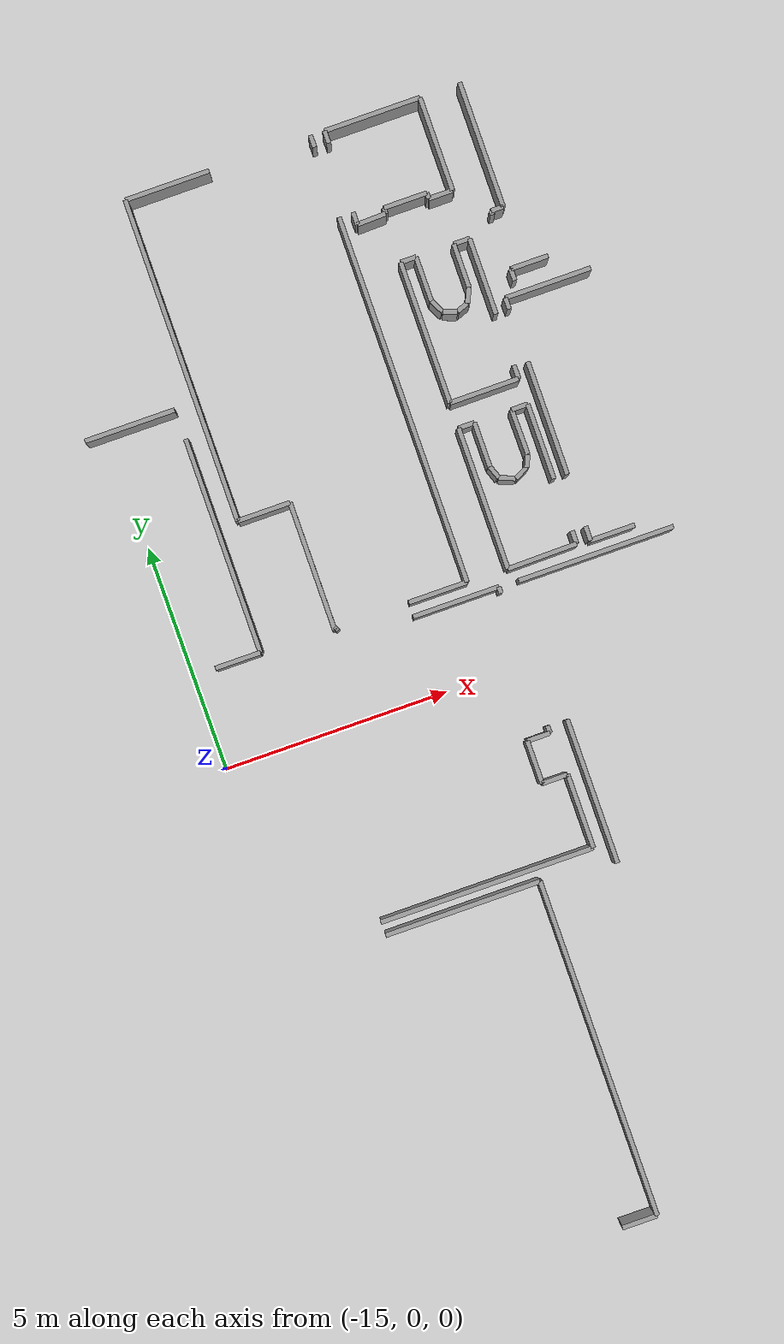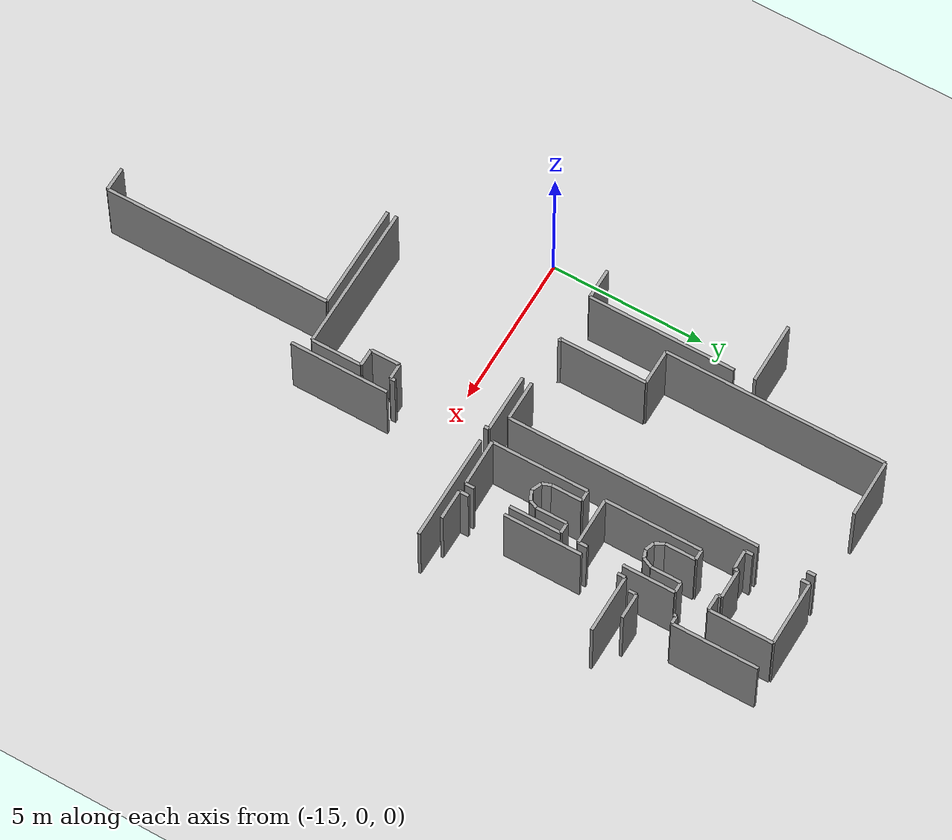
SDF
<sdf version="1.6">
 <world name="default">
  <model name="ground_plane">
   <static>1</static>
   <link name="link">
    <collision name="collision">
     <geometry><plane><normal>0 0 1</normal><size>100 100</size></plane></geometry>
     <surface><friction><ode><mu>100</mu><mu2>50</mu2></ode></friction></surface>
    </collision>
    <visual name="visual">
     <cast_shadows>0</cast_shadows>
     <geometry><plane><normal>0 0 1</normal><size>100 100</size></plane></geometry>
     <material>
      <script><uri>file://media/materials/scripts/gazebo.material</uri><name>Gazebo/Grey</name></script>
     </material>
    </visual>
   </link>
  </model>
  <model name="0510034690_Layout1">
   <static>1</static>
   <link name="Wall_35">
    <collision name="Wall_35_Collision">
     <geometry><box><size>3.4456132966 0.1 2.5</size></box></geometry>
     <pose>1.7228066483 0 1.25 0 0 0</pose>
    </collision>
    <visual name="Wall_35_Visual">
     <pose>1.7228066483 0 1.25 0 0 0</pose>
     <geometry><box><size>3.4456132966 0.1 2.5</size></box></geometry>
     <material>
      <script><uri>file://media/materials/scripts/gazebo.material</uri><name>Gazebo/Grey</name></script>
      <ambient>1 1 1 1</ambient>
     </material>
    </visual>
    <pose>43.1615809553 -17.1995389958 0 0 0 0.0</pose>
   </link>
   <link name="Wall_36">
    <collision name="Wall_36_Collision">
     <geometry><box><size>7.45252075216 0.1 2.5</size></box></geometry>
     <pose>3.72626037608 0 1.25 0 0 0</pose>
    </collision>
    <visual name="Wall_36_Visual">
     <pose>3.72626037608 0 1.25 0 0 0</pose>
     <geometry><box><size>7.45252075216 0.1 2.5</size></box></geometry>
     <material>
      <script><uri>file://media/materials/scripts/gazebo.material</uri><name>Gazebo/Grey</name></script>
      <ambient>1 1 1 1</ambient>
     </material>
    </visual>
    <pose>46.6071942519 -17.1995389958 0 0 0 -1.57079632679</pose>
   </link>
   <link name="Wall_37">
    <collision name="Wall_37_Collision">
     <geometry><box><size>0.779497738721 0.1 2.5</size></box></geometry>
     <pose>0.389748869361 0 1.25 0 0 0</pose>
    </collision>
    <visual name="Wall_37_Visual">
     <pose>0.389748869361 0 1.25 0 0 0</pose>
     <geometry><box><size>0.779497738721 0.1 2.5</size></box></geometry>
     <material>
      <script><uri>file://media/materials/scripts/gazebo.material</uri><name>Gazebo/Grey</name></script>
      <ambient>1 1 1 1</ambient>
     </material>
    </visual>
    <pose>46.6071942519 -24.652059748 0 0 0 3.14159265359</pose>
   </link>
   <link name="Wall_39">
    <collision name="Wall_39_Collision">
     <geometry><box><size>2.85274871848 0.1 2.5</size></box></geometry>
     <pose>1.42637435924 0 1.25 0 0 0</pose>
    </collision>
    <visual name="Wall_39_Visual">
     <pose>1.42637435924 0 1.25 0 0 0</pose>
     <geometry><box><size>2.85274871848 0.1 2.5</size></box></geometry>
     <material>
      <script><uri>file://media/materials/scripts/gazebo.material</uri><name>Gazebo/Grey</name></script>
      <ambient>1 1 1 1</ambient>
     </material>
    </visual>
    <pose>44.2742797443 -10.782502634 0 0 0 1.57079632679</pose>
   </link>
   <link name="Wall_40">
    <collision name="Wall_40_Collision">
     <geometry><box><size>1.16975376341 0.1 2.5</size></box></geometry>
     <pose>0.584876881705 0 1.25 0 0 0</pose>
    </collision>
    <visual name="Wall_40_Visual">
     <pose>0.584876881705 0 1.25 0 0 0</pose>
     <geometry><box><size>1.16975376341 0.1 2.5</size></box></geometry>
     <material>
      <script><uri>file://media/materials/scripts/gazebo.material</uri><name>Gazebo/Grey</name></script>
      <ambient>1 1 1 1</ambient>
     </material>
    </visual>
    <pose>44.2742797443 -7.92975391556 0 0 0 3.14159265359</pose>
   </link>
   <link name="Wall_41">
    <collision name="Wall_41_Collision">
     <geometry><box><size>7.16902092396 0.1 2.5</size></box></geometry>
     <pose>3.58451046198 0 1.25 0 0 0</pose>
    </collision>
    <visual name="Wall_41_Visual">
     <pose>3.58451046198 0 1.25 0 0 0</pose>
     <geometry><box><size>7.16902092396 0.1 2.5</size></box></geometry>
     <material>
      <script><uri>file://media/materials/scripts/gazebo.material</uri><name>Gazebo/Grey</name></script>
      <ambient>1 1 1 1</ambient>
     </material>
    </visual>
    <pose>43.1045259809 -7.92975391556 0 0 0 1.57079632679</pose>
   </link>
   <link name="Wall_42">
    <collision name="Wall_42_Collision">
     <geometry><box><size>1.87431930246 0.1 2.5</size></box></geometry>
     <pose>0.937159651229 0 1.25 0 0 0</pose>
    </collision>
    <visual name="Wall_42_Visual">
     <pose>0.937159651229 0 1.25 0 0 0</pose>
     <geometry><box><size>1.87431930246 0.1 2.5</size></box></geometry>
     <material>
      <script><uri>file://media/materials/scripts/gazebo.material</uri><name>Gazebo/Grey</name></script>
      <ambient>1 1 1 1</ambient>
     </material>
    </visual>
    <pose>43.1045259809 -0.760732991595 0 0 0 0.0</pose>
   </link>
   <link name="Wall_43">
    <collision name="Wall_43_Collision">
     <geometry><box><size>0.264481503411 0.1 2.5</size></box></geometry>
     <pose>0.132240751706 0 1.25 0 0 0</pose>
    </collision>
    <visual name="Wall_43_Visual">
     <pose>0.132240751706 0 1.25 0 0 0</pose>
     <geometry><box><size>0.264481503411 0.1 2.5</size></box></geometry>
     <material>
      <script><uri>file://media/materials/scripts/gazebo.material</uri><name>Gazebo/Grey</name></script>
      <ambient>1 1 1 1</ambient>
     </material>
    </visual>
    <pose>47.2389830014 -0.760732991595 0 0 0 -1.57079632679</pose>
   </link>
   <link name="Wall_44">
    <collision name="Wall_44_Collision">
     <geometry><box><size>8.15391657041 0.1 2.5</size></box></geometry>
     <pose>4.07695828521 0 1.25 0 0 0</pose>
    </collision>
    <visual name="Wall_44_Visual">
     <pose>4.07695828521 0 1.25 0 0 0</pose>
     <geometry><box><size>8.15391657041 0.1 2.5</size></box></geometry>
     <material>
      <script><uri>file://media/materials/scripts/gazebo.material</uri><name>Gazebo/Grey</name></script>
      <ambient>1 1 1 1</ambient>
     </material>
    </visual>
    <pose>47.2389830014 -2.58890115923 0 0 0 -1.57079632679</pose>
   </link>
   <link name="Wall_45">
    <collision name="Wall_45_Collision">
     <geometry><box><size>1.30098020446 0.1 2.5</size></box></geometry>
     <pose>0.65049010223 0 1.25 0 0 0</pose>
    </collision>
    <visual name="Wall_45_Visual">
     <pose>0.65049010223 0 1.25 0 0 0</pose>
     <geometry><box><size>1.30098020446 0.1 2.5</size></box></geometry>
     <material>
      <script><uri>file://media/materials/scripts/gazebo.material</uri><name>Gazebo/Grey</name></script>
      <ambient>1 1 1 1</ambient>
     </material>
    </visual>
    <pose>47.2389830014 -10.7428177296 0 0 0 3.14159265359</pose>
   </link>
   <link name="Wall_46">
    <collision name="Wall_46_Collision">
     <geometry><box><size>0.0923848718355 0.1 2.5</size></box></geometry>
     <pose>0.0461924359178 0 1.25 0 0 0</pose>
    </collision>
    <visual name="Wall_46_Visual">
     <pose>0.0461924359178 0 1.25 0 0 0</pose>
     <geometry><box><size>0.0923848718355 0.1 2.5</size></box></geometry>
     <material>
      <script><uri>file://media/materials/scripts/gazebo.material</uri><name>Gazebo/Grey</name></script>
      <ambient>1 1 1 1</ambient>
     </material>
    </visual>
    <pose>44.3577067958 -10.7428177296 0 0 0 -2.69758647175</pose>
   </link>
   <link name="Wall_54">
    <collision name="Wall_54_Collision">
     <geometry><box><size>1.99907951308 0.1 2.5</size></box></geometry>
     <pose>0.99953975654 0 1.25 0 0 0</pose>
    </collision>
    <visual name="Wall_54_Visual">
     <pose>0.99953975654 0 1.25 0 0 0</pose>
     <geometry><box><size>1.99907951308 0.1 2.5</size></box></geometry>
     <material>
      <script><uri>file://media/materials/scripts/gazebo.material</uri><name>Gazebo/Grey</name></script>
      <ambient>1 1 1 1</ambient>
     </material>
    </visual>
    <pose>42.6229819973 -5.28100842765 0 0 0 3.14159265359</pose>
   </link>
   <link name="Wall_57">
    <collision name="Wall_57_Collision">
     <geometry><box><size>4.76396357103 0.1 2.5</size></box></geometry>
     <pose>2.38198178552 0 1.25 0 0 0</pose>
    </collision>
    <visual name="Wall_57_Visual">
     <pose>2.38198178552 0 1.25 0 0 0</pose>
     <geometry><box><size>4.76396357103 0.1 2.5</size></box></geometry>
     <material>
      <script><uri>file://media/materials/scripts/gazebo.material</uri><name>Gazebo/Grey</name></script>
      <ambient>1 1 1 1</ambient>
     </material>
    </visual>
    <pose>42.6414931667 -5.94246576385 0 0 0 -1.57079632679</pose>
   </link>
   <link name="Wall_58">
    <collision name="Wall_58_Collision">
     <geometry><box><size>1.00442112657 0.1 2.5</size></box></geometry>
     <pose>0.502210563285 0 1.25 0 0 0</pose>
    </collision>
    <visual name="Wall_58_Visual">
     <pose>0.502210563285 0 1.25 0 0 0</pose>
     <geometry><box><size>1.00442112657 0.1 2.5</size></box></geometry>
     <material>
      <script><uri>file://media/materials/scripts/gazebo.material</uri><name>Gazebo/Grey</name></script>
      <ambient>1 1 1 1</ambient>
     </material>
    </visual>
    <pose>42.6414931667 -10.7064293349 0 0 0 3.14159265359</pose>
   </link>
   <link name="Wall_75">
    <collision name="Wall_75_Collision">
     <geometry><box><size>1.9126095297 0.1 2.5</size></box></geometry>
     <pose>0.956304764851 0 1.25 0 0 0</pose>
    </collision>
    <visual name="Wall_75_Visual">
     <pose>0.956304764851 0 1.25 0 0 0</pose>
     <geometry><box><size>1.9126095297 0.1 2.5</size></box></geometry>
     <material>
      <script><uri>file://media/materials/scripts/gazebo.material</uri><name>Gazebo/Grey</name></script>
      <ambient>1 1 1 1</ambient>
     </material>
    </visual>
    <pose>45.9244363919 -11.0581415547 0 0 0 0.0</pose>
   </link>
   <link name="Wall_76">
    <collision name="Wall_76_Collision">
     <geometry><box><size>0.142764224756 0.1 2.5</size></box></geometry>
     <pose>0.071382112378 0 1.25 0 0 0</pose>
    </collision>
    <visual name="Wall_76_Visual">
     <pose>0.071382112378 0 1.25 0 0 0</pose>
     <geometry><box><size>0.142764224756 0.1 2.5</size></box></geometry>
     <material>
      <script><uri>file://media/materials/scripts/gazebo.material</uri><name>Gazebo/Grey</name></script>
      <ambient>1 1 1 1</ambient>
     </material>
    </visual>
    <pose>47.8370459216 -11.0581415547 0 0 0 -1.57079632679</pose>
   </link>
   <link name="Wall_77">
    <collision name="Wall_77_Collision">
     <geometry><box><size>0.160387872395 0.1 2.5</size></box></geometry>
     <pose>0.0801939361973 0 1.25 0 0 0</pose>
    </collision>
    <visual name="Wall_77_Visual">
     <pose>0.0801939361973 0 1.25 0 0 0</pose>
     <geometry><box><size>0.160387872395 0.1 2.5</size></box></geometry>
     <material>
      <script><uri>file://media/materials/scripts/gazebo.material</uri><name>Gazebo/Grey</name></script>
      <ambient>1 1 1 1</ambient>
     </material>
    </visual>
    <pose>47.8370459216 -14.161425005 0 0 0 -1.57079632679</pose>
   </link>
   <link name="Wall_78">
    <collision name="Wall_78_Collision">
     <geometry><box><size>0.50652138357 0.1 2.5</size></box></geometry>
     <pose>0.253260691785 0 1.25 0 0 0</pose>
    </collision>
    <visual name="Wall_78_Visual">
     <pose>0.253260691785 0 1.25 0 0 0</pose>
     <geometry><box><size>0.50652138357 0.1 2.5</size></box></geometry>
     <material>
      <script><uri>file://media/materials/scripts/gazebo.material</uri><name>Gazebo/Grey</name></script>
      <ambient>1 1 1 1</ambient>
     </material>
    </visual>
    <pose>47.8370459216 -14.3218128774 0 0 0 3.14159265359</pose>
   </link>
   <link name="Wall_79">
    <collision name="Wall_79_Collision">
     <geometry><box><size>0.947746518696 0.1 2.5</size></box></geometry>
     <pose>0.473873259348 0 1.25 0 0 0</pose>
    </collision>
    <visual name="Wall_79_Visual">
     <pose>0.473873259348 0 1.25 0 0 0</pose>
     <geometry><box><size>0.947746518696 0.1 2.5</size></box></geometry>
     <material>
      <script><uri>file://media/materials/scripts/gazebo.material</uri><name>Gazebo/Grey</name></script>
      <ambient>1 1 1 1</ambient>
     </material>
    </visual>
    <pose>47.3305245381 -14.3218128774 0 0 0 -1.57079632679</pose>
   </link>
   <link name="Wall_80">
    <collision name="Wall_80_Collision">
     <geometry><box><size>0.568647911217 0.1 2.5</size></box></geometry>
     <pose>0.284323955609 0 1.25 0 0 0</pose>
    </collision>
    <visual name="Wall_80_Visual">
     <pose>0.284323955609 0 1.25 0 0 0</pose>
     <geometry><box><size>0.568647911217 0.1 2.5</size></box></geometry>
     <material>
      <script><uri>file://media/materials/scripts/gazebo.material</uri><name>Gazebo/Grey</name></script>
      <ambient>1 1 1 1</ambient>
     </material>
    </visual>
    <pose>47.3305245381 -15.2695593961 0 0 0 0.0</pose>
   </link>
   <link name="Wall_81">
    <collision name="Wall_81_Collision">
     <geometry><box><size>1.6350687766 0.1 2.5</size></box></geometry>
     <pose>0.817534388301 0 1.25 0 0 0</pose>
    </collision>
    <visual name="Wall_81_Visual">
     <pose>0.817534388301 0 1.25 0 0 0</pose>
     <geometry><box><size>1.6350687766 0.1 2.5</size></box></geometry>
     <material>
      <script><uri>file://media/materials/scripts/gazebo.material</uri><name>Gazebo/Grey</name></script>
      <ambient>1 1 1 1</ambient>
     </material>
    </visual>
    <pose>47.8991724493 -15.2695593961 0 0 0 -1.57079632679</pose>
   </link>
   <link name="Wall_82">
    <collision name="Wall_82_Collision">
     <geometry><box><size>4.74481845741 0.1 2.5</size></box></geometry>
     <pose>2.37240922871 0 1.25 0 0 0</pose>
    </collision>
    <visual name="Wall_82_Visual">
     <pose>2.37240922871 0 1.25 0 0 0</pose>
     <geometry><box><size>4.74481845741 0.1 2.5</size></box></geometry>
     <material>
      <script><uri>file://media/materials/scripts/gazebo.material</uri><name>Gazebo/Grey</name></script>
      <ambient>1 1 1 1</ambient>
     </material>
    </visual>
    <pose>47.8991724493 -16.9046281727 0 0 0 3.14159265359</pose>
   </link>
   <link name="Wall_87">
    <collision name="Wall_87_Collision">
     <geometry><box><size>3.14093973346 0.1 2.5</size></box></geometry>
     <pose>1.57046986673 0 1.25 0 0 0</pose>
    </collision>
    <visual name="Wall_87_Visual">
     <pose>1.57046986673 0 1.25 0 0 0</pose>
     <geometry><box><size>3.14093973346 0.1 2.5</size></box></geometry>
     <material>
      <script><uri>file://media/materials/scripts/gazebo.material</uri><name>Gazebo/Grey</name></script>
      <ambient>1 1 1 1</ambient>
     </material>
    </visual>
    <pose>48.1499607589 -7.05934858434 0 0 0 1.57079632679</pose>
   </link>
   <link name="Wall_88">
    <collision name="Wall_88_Collision">
     <geometry><box><size>0.339794069579 0.1 2.5</size></box></geometry>
     <pose>0.16989703479 0 1.25 0 0 0</pose>
    </collision>
    <visual name="Wall_88_Visual">
     <pose>0.16989703479 0 1.25 0 0 0</pose>
     <geometry><box><size>0.339794069579 0.1 2.5</size></box></geometry>
     <material>
      <script><uri>file://media/materials/scripts/gazebo.material</uri><name>Gazebo/Grey</name></script>
      <ambient>1 1 1 1</ambient>
     </material>
    </visual>
    <pose>48.1499607589 -3.91840885087 0 0 0 0.0</pose>
   </link>
   <link name="Wall_89">
    <collision name="Wall_89_Collision">
     <geometry><box><size>0.986670690099 0.1 2.5</size></box></geometry>
     <pose>0.493335345049 0 1.25 0 0 0</pose>
    </collision>
    <visual name="Wall_89_Visual">
     <pose>0.493335345049 0 1.25 0 0 0</pose>
     <geometry><box><size>0.986670690099 0.1 2.5</size></box></geometry>
     <material>
      <script><uri>file://media/materials/scripts/gazebo.material</uri><name>Gazebo/Grey</name></script>
      <ambient>1 1 1 1</ambient>
     </material>
    </visual>
    <pose>48.4897548284 -3.91840885087 0 0 0 -1.57079632679</pose>
   </link>
   <link name="Wall_90">
    <collision name="Wall_90_Collision">
     <geometry><box><size>0.323746909501 0.1 2.5</size></box></geometry>
     <pose>0.161873454751 0 1.25 0 0 0</pose>
    </collision>
    <visual name="Wall_90_Visual">
     <pose>0.161873454751 0 1.25 0 0 0</pose>
     <geometry><box><size>0.323746909501 0.1 2.5</size></box></geometry>
     <material>
      <script><uri>file://media/materials/scripts/gazebo.material</uri><name>Gazebo/Grey</name></script>
      <ambient>1 1 1 1</ambient>
     </material>
    </visual>
    <pose>48.4897548284 -4.90507954097 0 0 0 -1.07666928641</pose>
   </link>
   <link name="Wall_91">
    <collision name="Wall_91_Collision">
     <geometry><box><size>0.308604251332 0.1 2.5</size></box></geometry>
     <pose>0.154302125666 0 1.25 0 0 0</pose>
    </collision>
    <visual name="Wall_91_Visual">
     <pose>0.154302125666 0 1.25 0 0 0</pose>
     <geometry><box><size>0.308604251332 0.1 2.5</size></box></geometry>
     <material>
      <script><uri>file://media/materials/scripts/gazebo.material</uri><name>Gazebo/Grey</name></script>
      <ambient>1 1 1 1</ambient>
     </material>
    </visual>
    <pose>48.6432961039 -5.19010083516 0 0 0 -0.344488675168</pose>
   </link>
   <link name="Wall_92">
    <collision name="Wall_92_Collision">
     <geometry><box><size>0.273970951516 0.1 2.5</size></box></geometry>
     <pose>0.136985475758 0 1.25 0 0 0</pose>
    </collision>
    <visual name="Wall_92_Visual">
     <pose>0.136985475758 0 1.25 0 0 0</pose>
     <geometry><box><size>0.273970951516 0.1 2.5</size></box></geometry>
     <material>
      <script><uri>file://media/materials/scripts/gazebo.material</uri><name>Gazebo/Grey</name></script>
      <ambient>1 1 1 1</ambient>
     </material>
    </visual>
    <pose>48.9337693179 -5.29432125501 0 0 0 0.347070862884</pose>
   </link>
   <link name="Wall_93">
    <collision name="Wall_93_Collision">
     <geometry><box><size>0.343377116642 0.1 2.5</size></box></geometry>
     <pose>0.171688558321 0 1.25 0 0 0</pose>
    </collision>
    <visual name="Wall_93_Visual">
     <pose>0.171688558321 0 1.25 0 0 0</pose>
     <geometry><box><size>0.343377116642 0.1 2.5</size></box></geometry>
     <material>
      <script><uri>file://media/materials/scripts/gazebo.material</uri><name>Gazebo/Grey</name></script>
      <ambient>1 1 1 1</ambient>
     </material>
    </visual>
    <pose>49.1914042244 -5.20113146354 0 0 0 1.14282425558</pose>
   </link>
   <link name="Wall_94">
    <collision name="Wall_94_Collision">
     <geometry><box><size>0.964736222175 0.1 2.5</size></box></geometry>
     <pose>0.482368111087 0 1.25 0 0 0</pose>
    </collision>
    <visual name="Wall_94_Visual">
     <pose>0.482368111087 0 1.25 0 0 0</pose>
     <geometry><box><size>0.964736222175 0.1 2.5</size></box></geometry>
     <material>
      <script><uri>file://media/materials/scripts/gazebo.material</uri><name>Gazebo/Grey</name></script>
      <ambient>1 1 1 1</ambient>
     </material>
    </visual>
    <pose>49.3339148714 -4.88872378165 0 0 0 1.57079632679</pose>
   </link>
   <link name="Wall_95">
    <collision name="Wall_95_Collision">
     <geometry><box><size>0.350824697957 0.1 2.5</size></box></geometry>
     <pose>0.175412348979 0 1.25 0 0 0</pose>
    </collision>
    <visual name="Wall_95_Visual">
     <pose>0.175412348979 0 1.25 0 0 0</pose>
     <geometry><box><size>0.350824697957 0.1 2.5</size></box></geometry>
     <material>
      <script><uri>file://media/materials/scripts/gazebo.material</uri><name>Gazebo/Grey</name></script>
      <ambient>1 1 1 1</ambient>
     </material>
    </visual>
    <pose>49.3339148714 -3.92398755948 0 0 0 0.0</pose>
   </link>
   <link name="Wall_96">
    <collision name="Wall_96_Collision">
     <geometry><box><size>1.6862914647 0.1 2.5</size></box></geometry>
     <pose>0.843145732351 0 1.25 0 0 0</pose>
    </collision>
    <visual name="Wall_96_Visual">
     <pose>0.843145732351 0 1.25 0 0 0</pose>
     <geometry><box><size>1.6862914647 0.1 2.5</size></box></geometry>
     <material>
      <script><uri>file://media/materials/scripts/gazebo.material</uri><name>Gazebo/Grey</name></script>
      <ambient>1 1 1 1</ambient>
     </material>
    </visual>
    <pose>49.6847395694 -3.92398755948 0 0 0 -1.57079632679</pose>
   </link>
   <link name="Wall_97">
    <collision name="Wall_97_Collision">
     <geometry><box><size>0.300235954016 0.1 2.5</size></box></geometry>
     <pose>0.150117977008 0 1.25 0 0 0</pose>
    </collision>
    <visual name="Wall_97_Visual">
     <pose>0.150117977008 0 1.25 0 0 0</pose>
     <geometry><box><size>0.300235954016 0.1 2.5</size></box></geometry>
     <material>
      <script><uri>file://media/materials/scripts/gazebo.material</uri><name>Gazebo/Grey</name></script>
      <ambient>1 1 1 1</ambient>
     </material>
    </visual>
    <pose>49.6847395694 -6.75264639989 0 0 0 -1.57079632679</pose>
   </link>
   <link name="Wall_98">
    <collision name="Wall_98_Collision">
     <geometry><box><size>1.53479243203 0.1 2.5</size></box></geometry>
     <pose>0.767396216017 0 1.25 0 0 0</pose>
    </collision>
    <visual name="Wall_98_Visual">
     <pose>0.767396216017 0 1.25 0 0 0</pose>
     <geometry><box><size>1.53479243203 0.1 2.5</size></box></geometry>
     <material>
      <script><uri>file://media/materials/scripts/gazebo.material</uri><name>Gazebo/Grey</name></script>
      <ambient>1 1 1 1</ambient>
     </material>
    </visual>
    <pose>49.6847395694 -7.05288235391 0 0 0 -3.13737954345</pose>
   </link>
   <link name="Wall_99">
    <collision name="Wall_99_Collision">
     <geometry><box><size>0.27094773384 0.1 2.5</size></box></geometry>
     <pose>0.13547386692 0 1.25 0 0 0</pose>
    </collision>
    <visual name="Wall_99_Visual">
     <pose>0.13547386692 0 1.25 0 0 0</pose>
     <geometry><box><size>0.27094773384 0.1 2.5</size></box></geometry>
     <material>
      <script><uri>file://media/materials/scripts/gazebo.material</uri><name>Gazebo/Grey</name></script>
      <ambient>1 1 1 1</ambient>
     </material>
    </visual>
    <pose>47.5511371056 -2.86377934686 0 0 0 1.57079632679</pose>
   </link>
   <link name="Wall_100">
    <collision name="Wall_100_Collision">
     <geometry><box><size>0.271074522672 0.1 2.5</size></box></geometry>
     <pose>0.135537261336 0 1.25 0 0 0</pose>
    </collision>
    <visual name="Wall_100_Visual">
     <pose>0.135537261336 0 1.25 0 0 0</pose>
     <geometry><box><size>0.271074522672 0.1 2.5</size></box></geometry>
     <material>
      <script><uri>file://media/materials/scripts/gazebo.material</uri><name>Gazebo/Grey</name></script>
      <ambient>1 1 1 1</ambient>
     </material>
    </visual>
    <pose>47.5511371056 -1.04207740965 0 0 0 1.57079632679</pose>
   </link>
   <link name="Wall_101">
    <collision name="Wall_101_Collision">
     <geometry><box><size>2.13055953179 0.1 2.5</size></box></geometry>
     <pose>1.0652797659 0 1.25 0 0 0</pose>
    </collision>
    <visual name="Wall_101_Visual">
     <pose>1.0652797659 0 1.25 0 0 0</pose>
     <geometry><box><size>2.13055953179 0.1 2.5</size></box></geometry>
     <material>
      <script><uri>file://media/materials/scripts/gazebo.material</uri><name>Gazebo/Grey</name></script>
      <ambient>1 1 1 1</ambient>
     </material>
    </visual>
    <pose>47.5511371056 -0.771002886982 0 0 0 0.0</pose>
   </link>
   <link name="Wall_102">
    <collision name="Wall_102_Collision">
     <geometry><box><size>2.07388492392 0.1 2.5</size></box></geometry>
     <pose>1.03694246196 0 1.25 0 0 0</pose>
    </collision>
    <visual name="Wall_102_Visual">
     <pose>1.03694246196 0 1.25 0 0 0</pose>
     <geometry><box><size>2.07388492392 0.1 2.5</size></box></geometry>
     <material>
      <script><uri>file://media/materials/scripts/gazebo.material</uri><name>Gazebo/Grey</name></script>
      <ambient>1 1 1 1</ambient>
     </material>
    </visual>
    <pose>49.6816966374 -0.771002886982 0 0 0 -1.57079632679</pose>
   </link>
   <link name="Wall_103">
    <collision name="Wall_103_Collision">
     <geometry><box><size>0.52947016215 0.1 2.5</size></box></geometry>
     <pose>0.264735081075 0 1.25 0 0 0</pose>
    </collision>
    <visual name="Wall_103_Visual">
     <pose>0.264735081075 0 1.25 0 0 0</pose>
     <geometry><box><size>0.52947016215 0.1 2.5</size></box></geometry>
     <material>
      <script><uri>file://media/materials/scripts/gazebo.material</uri><name>Gazebo/Grey</name></script>
      <ambient>1 1 1 1</ambient>
     </material>
    </visual>
    <pose>49.6816966374 -2.8448878109 0 0 0 3.14159265359</pose>
   </link>
   <link name="Wall_104">
    <collision name="Wall_104_Collision">
     <geometry><box><size>0.126028098941 0.1 2.5</size></box></geometry>
     <pose>0.0630140494705 0 1.25 0 0 0</pose>
    </collision>
    <visual name="Wall_104_Visual">
     <pose>0.0630140494705 0 1.25 0 0 0</pose>
     <geometry><box><size>0.126028098941 0.1 2.5</size></box></geometry>
     <material>
      <script><uri>file://media/materials/scripts/gazebo.material</uri><name>Gazebo/Grey</name></script>
      <ambient>1 1 1 1</ambient>
     </material>
    </visual>
    <pose>49.1522264753 -2.8448878109 0 0 0 1.57079632679</pose>
   </link>
   <link name="Wall_105">
    <collision name="Wall_105_Collision">
     <geometry><box><size>0.958143202914 0.1 2.5</size></box></geometry>
     <pose>0.479071601457 0 1.25 0 0 0</pose>
    </collision>
    <visual name="Wall_105_Visual">
     <pose>0.479071601457 0 1.25 0 0 0</pose>
     <geometry><box><size>0.958143202914 0.1 2.5</size></box></geometry>
     <material>
      <script><uri>file://media/materials/scripts/gazebo.material</uri><name>Gazebo/Grey</name></script>
      <ambient>1 1 1 1</ambient>
     </material>
    </visual>
    <pose>49.1522264753 -2.71885971196 0 0 0 3.14159265359</pose>
   </link>
   <link name="Wall_106">
    <collision name="Wall_106_Collision">
     <geometry><box><size>0.126028098941 0.1 2.5</size></box></geometry>
     <pose>0.0630140494705 0 1.25 0 0 0</pose>
    </collision>
    <visual name="Wall_106_Visual">
     <pose>0.0630140494705 0 1.25 0 0 0</pose>
     <geometry><box><size>0.126028098941 0.1 2.5</size></box></geometry>
     <material>
      <script><uri>file://media/materials/scripts/gazebo.material</uri><name>Gazebo/Grey</name></script>
      <ambient>1 1 1 1</ambient>
     </material>
    </visual>
    <pose>48.1940832724 -2.71885971196 0 0 0 -1.57079632679</pose>
   </link>
   <link name="Wall_107">
    <collision name="Wall_107_Collision">
     <geometry><box><size>0.64322364963 0.1 2.5</size></box></geometry>
     <pose>0.321611824815 0 1.25 0 0 0</pose>
    </collision>
    <visual name="Wall_107_Visual">
     <pose>0.321611824815 0 1.25 0 0 0</pose>
     <geometry><box><size>0.64322364963 0.1 2.5</size></box></geometry>
     <material>
      <script><uri>file://media/materials/scripts/gazebo.material</uri><name>Gazebo/Grey</name></script>
      <ambient>1 1 1 1</ambient>
     </material>
    </visual>
    <pose>48.1940832724 -2.8448878109 0 0 0 -3.11221834031</pose>
   </link>
   <link name="Wall_108">
    <collision name="Wall_108_Collision">
     <geometry><box><size>3.14170046646 0.1 2.5</size></box></geometry>
     <pose>1.57085023323 0 1.25 0 0 0</pose>
    </collision>
    <visual name="Wall_108_Visual">
     <pose>1.57085023323 0 1.25 0 0 0</pose>
     <geometry><box><size>3.14170046646 0.1 2.5</size></box></geometry>
     <material>
      <script><uri>file://media/materials/scripts/gazebo.material</uri><name>Gazebo/Grey</name></script>
      <ambient>1 1 1 1</ambient>
     </material>
    </visual>
    <pose>48.1445088391 -10.7647521976 0 0 0 1.57079632679</pose>
   </link>
   <link name="Wall_109">
    <collision name="Wall_109_Collision">
     <geometry><box><size>0.352092586277 0.1 2.5</size></box></geometry>
     <pose>0.176046293138 0 1.25 0 0 0</pose>
    </collision>
    <visual name="Wall_109_Visual">
     <pose>0.176046293138 0 1.25 0 0 0</pose>
     <geometry><box><size>0.352092586277 0.1 2.5</size></box></geometry>
     <material>
      <script><uri>file://media/materials/scripts/gazebo.material</uri><name>Gazebo/Grey</name></script>
      <ambient>1 1 1 1</ambient>
     </material>
    </visual>
    <pose>48.1445088391 -7.62305173111 0 0 0 0.0</pose>
   </link>
   <link name="Wall_110">
    <collision name="Wall_110_Collision">
     <geometry><box><size>0.983374180469 0.1 2.5</size></box></geometry>
     <pose>0.491687090234 0 1.25 0 0 0</pose>
    </collision>
    <visual name="Wall_110_Visual">
     <pose>0.491687090234 0 1.25 0 0 0</pose>
     <geometry><box><size>0.983374180469 0.1 2.5</size></box></geometry>
     <material>
      <script><uri>file://media/materials/scripts/gazebo.material</uri><name>Gazebo/Grey</name></script>
      <ambient>1 1 1 1</ambient>
     </material>
    </visual>
    <pose>48.4966014254 -7.62305173111 0 0 0 -1.57079632679</pose>
   </link>
   <link name="Wall_111">
    <collision name="Wall_111_Collision">
     <geometry><box><size>0.295351529228 0.1 2.5</size></box></geometry>
     <pose>0.147675764614 0 1.25 0 0 0</pose>
    </collision>
    <visual name="Wall_111_Visual">
     <pose>0.147675764614 0 1.25 0 0 0</pose>
     <geometry><box><size>0.295351529228 0.1 2.5</size></box></geometry>
     <material>
      <script><uri>file://media/materials/scripts/gazebo.material</uri><name>Gazebo/Grey</name></script>
      <ambient>1 1 1 1</ambient>
     </material>
    </visual>
    <pose>48.4966014254 -8.60642591158 0 0 0 -1.21428661836</pose>
   </link>
   <link name="Wall_112">
    <collision name="Wall_112_Collision">
     <geometry><box><size>0.361075828287 0.1 2.5</size></box></geometry>
     <pose>0.180537914144 0 1.25 0 0 0</pose>
    </collision>
    <visual name="Wall_112_Visual">
     <pose>0.180537914144 0 1.25 0 0 0</pose>
     <geometry><box><size>0.361075828287 0.1 2.5</size></box></geometry>
     <material>
      <script><uri>file://media/materials/scripts/gazebo.material</uri><name>Gazebo/Grey</name></script>
      <ambient>1 1 1 1</ambient>
     </material>
    </visual>
    <pose>48.5996807457 -8.88320593169 0 0 0 -0.392765299987</pose>
   </link>
   <link name="Wall_113">
    <collision name="Wall_113_Collision">
     <geometry><box><size>0.330400748986 0.1 2.5</size></box></geometry>
     <pose>0.165200374493 0 1.25 0 0 0</pose>
    </collision>
    <visual name="Wall_113_Visual">
     <pose>0.165200374493 0 1.25 0 0 0</pose>
     <geometry><box><size>0.330400748986 0.1 2.5</size></box></geometry>
     <material>
      <script><uri>file://media/materials/scripts/gazebo.material</uri><name>Gazebo/Grey</name></script>
      <ambient>1 1 1 1</ambient>
     </material>
    </visual>
    <pose>48.9332621625 -9.0214057585 0 0 0 0.463475994106</pose>
   </link>
   <link name="Wall_114">
    <collision name="Wall_114_Collision">
     <geometry><box><size>0.27546384511 0.1 2.5</size></box></geometry>
     <pose>0.137731922555 0 1.25 0 0 0</pose>
    </collision>
    <visual name="Wall_114_Visual">
     <pose>0.137731922555 0 1.25 0 0 0</pose>
     <geometry><box><size>0.27546384511 0.1 2.5</size></box></geometry>
     <material>
      <script><uri>file://media/materials/scripts/gazebo.material</uri><name>Gazebo/Grey</name></script>
      <ambient>1 1 1 1</ambient>
     </material>
    </visual>
    <pose>49.2288069298 -8.87369676929 0 0 0 1.16131131764</pose>
   </link>
   <link name="Wall_115">
    <collision name="Wall_115_Collision">
     <geometry><box><size>0.996225236924 0.1 2.5</size></box></geometry>
     <pose>0.498112618462 0 1.25 0 0 0</pose>
    </collision>
    <visual name="Wall_115_Visual">
     <pose>0.498112618462 0 1.25 0 0 0</pose>
     <geometry><box><size>0.996225236924 0.1 2.5</size></box></geometry>
     <material>
      <script><uri>file://media/materials/scripts/gazebo.material</uri><name>Gazebo/Grey</name></script>
      <ambient>1 1 1 1</ambient>
     </material>
    </visual>
    <pose>49.3384792694 -8.62100662725 0 0 0 1.58034166498</pose>
   </link>
   <link name="Wall_116">
    <collision name="Wall_116_Collision">
     <geometry><box><size>0.357417717218 0.1 2.5</size></box></geometry>
     <pose>0.178708858609 0 1.25 0 0 0</pose>
    </collision>
    <visual name="Wall_116_Visual">
     <pose>0.178708858609 0 1.25 0 0 0</pose>
     <geometry><box><size>0.357417717218 0.1 2.5</size></box></geometry>
     <material>
      <script><uri>file://media/materials/scripts/gazebo.material</uri><name>Gazebo/Grey</name></script>
      <ambient>1 1 1 1</ambient>
     </material>
    </visual>
    <pose>49.328970107 -7.62482677476 0 0 0 0.0</pose>
   </link>
   <link name="Wall_117">
    <collision name="Wall_117_Collision">
     <geometry><box><size>1.66828745057 0.1 2.5</size></box></geometry>
     <pose>0.834143725284 0 1.25 0 0 0</pose>
    </collision>
    <visual name="Wall_117_Visual">
     <pose>0.834143725284 0 1.25 0 0 0</pose>
     <geometry><box><size>1.66828745057 0.1 2.5</size></box></geometry>
     <material>
      <script><uri>file://media/materials/scripts/gazebo.material</uri><name>Gazebo/Grey</name></script>
      <ambient>1 1 1 1</ambient>
     </material>
    </visual>
    <pose>49.6863878242 -7.62482677476 0 0 0 -1.57079632679</pose>
   </link>
   <link name="Wall_118">
    <collision name="Wall_118_Collision">
     <geometry><box><size>0.28996605863 0.1 2.5</size></box></geometry>
     <pose>0.144983029315 0 1.25 0 0 0</pose>
    </collision>
    <visual name="Wall_118_Visual">
     <pose>0.144983029315 0 1.25 0 0 0</pose>
     <geometry><box><size>0.28996605863 0.1 2.5</size></box></geometry>
     <material>
      <script><uri>file://media/materials/scripts/gazebo.material</uri><name>Gazebo/Grey</name></script>
      <ambient>1 1 1 1</ambient>
     </material>
    </visual>
    <pose>49.6863878242 -10.4534856152 0 0 0 -1.57079632679</pose>
   </link>
   <link name="Wall_119">
    <collision name="Wall_119_Collision">
     <geometry><box><size>1.54202610779 0.1 2.5</size></box></geometry>
     <pose>0.771013053894 0 1.25 0 0 0</pose>
    </collision>
    <visual name="Wall_119_Visual">
     <pose>0.771013053894 0 1.25 0 0 0</pose>
     <geometry><box><size>1.54202610779 0.1 2.5</size></box></geometry>
     <material>
      <script><uri>file://media/materials/scripts/gazebo.material</uri><name>Gazebo/Grey</name></script>
      <ambient>1 1 1 1</ambient>
     </material>
    </visual>
    <pose>49.6863878242 -10.7434516738 0 0 0 -3.12777887891</pose>
   </link>
   <link name="Wall_121">
    <collision name="Wall_121_Collision">
     <geometry><box><size>0.258395639478 0.1 2.5</size></box></geometry>
     <pose>0.129197819739 0 1.25 0 0 0</pose>
    </collision>
    <visual name="Wall_121_Visual">
     <pose>0.129197819739 0 1.25 0 0 0</pose>
     <geometry><box><size>0.258395639478 0.1 2.5</size></box></geometry>
     <material>
      <script><uri>file://media/materials/scripts/gazebo.material</uri><name>Gazebo/Grey</name></script>
      <ambient>1 1 1 1</ambient>
     </material>
    </visual>
    <pose>50.2925652297 -5.07282116562 0 0 0 1.57079632679</pose>
   </link>
   <link name="Wall_122">
    <collision name="Wall_122_Collision">
     <geometry><box><size>0.833636569956 0.1 2.5</size></box></geometry>
     <pose>0.416818284978 0 1.25 0 0 0</pose>
    </collision>
    <visual name="Wall_122_Visual">
     <pose>0.416818284978 0 1.25 0 0 0</pose>
     <geometry><box><size>0.833636569956 0.1 2.5</size></box></geometry>
     <material>
      <script><uri>file://media/materials/scripts/gazebo.material</uri><name>Gazebo/Grey</name></script>
      <ambient>1 1 1 1</ambient>
     </material>
    </visual>
    <pose>50.2925652297 -4.81442552614 0 0 0 0.0</pose>
   </link>
   <link name="Wall_125">
    <collision name="Wall_125_Collision">
     <geometry><box><size>0.0916683254872 0.1 2.5</size></box></geometry>
     <pose>0.0458341627436 0 1.25 0 0 0</pose>
    </collision>
    <visual name="Wall_125_Visual">
     <pose>0.0458341627436 0 1.25 0 0 0</pose>
     <geometry><box><size>0.0916683254872 0.1 2.5</size></box></geometry>
     <material>
      <script><uri>file://media/materials/scripts/gazebo.material</uri><name>Gazebo/Grey</name></script>
      <ambient>1 1 1 1</ambient>
     </material>
    </visual>
    <pose>50.3093013555 -3.61386207657 0 0 0 1.57079632679</pose>
   </link>
   <link name="Wall_126">
    <collision name="Wall_126_Collision">
     <geometry><box><size>0.266763702386 0.1 2.5</size></box></geometry>
     <pose>0.133381851193 0 1.25 0 0 0</pose>
    </collision>
    <visual name="Wall_126_Visual">
     <pose>0.133381851193 0 1.25 0 0 0</pose>
     <geometry><box><size>0.266763702386 0.1 2.5</size></box></geometry>
     <material>
      <script><uri>file://media/materials/scripts/gazebo.material</uri><name>Gazebo/Grey</name></script>
      <ambient>1 1 1 1</ambient>
     </material>
    </visual>
    <pose>50.3093013555 -3.52219375109 0 0 0 0.0</pose>
   </link>
   <link name="Wall_127">
    <collision name="Wall_127_Collision">
     <geometry><box><size>2.77604147516 0.1 2.5</size></box></geometry>
     <pose>1.38802073758 0 1.25 0 0 0</pose>
    </collision>
    <visual name="Wall_127_Visual">
     <pose>1.38802073758 0 1.25 0 0 0</pose>
     <geometry><box><size>2.77604147516 0.1 2.5</size></box></geometry>
     <material>
      <script><uri>file://media/materials/scripts/gazebo.material</uri><name>Gazebo/Grey</name></script>
      <ambient>1 1 1 1</ambient>
     </material>
    </visual>
    <pose>50.5760650579 -3.52219375109 0 0 0 1.57079632679</pose>
   </link>
   <link name="Wall_136">
    <collision name="Wall_136_Collision">
     <geometry><box><size>0.987431423091 0.1 2.5</size></box></geometry>
     <pose>0.493715711545 0 1.25 0 0 0</pose>
    </collision>
    <visual name="Wall_136_Visual">
     <pose>0.493715711545 0 1.25 0 0 0</pose>
     <geometry><box><size>0.987431423091 0.1 2.5</size></box></geometry>
     <material>
      <script><uri>file://media/materials/scripts/gazebo.material</uri><name>Gazebo/Grey</name></script>
      <ambient>1 1 1 1</ambient>
     </material>
    </visual>
    <pose>50.9711390582 -10.7762899813 0 0 0 3.14159265359</pose>
   </link>
   <link name="Wall_137">
    <collision name="Wall_137_Collision">
     <geometry><box><size>0.316338135672 0.1 2.5</size></box></geometry>
     <pose>0.158169067836 0 1.25 0 0 0</pose>
    </collision>
    <visual name="Wall_137_Visual">
     <pose>0.158169067836 0 1.25 0 0 0</pose>
     <geometry><box><size>0.316338135672 0.1 2.5</size></box></geometry>
     <material>
      <script><uri>file://media/materials/scripts/gazebo.material</uri><name>Gazebo/Grey</name></script>
      <ambient>1 1 1 1</ambient>
     </material>
    </visual>
    <pose>49.9837076351 -10.7762899813 0 0 0 1.57079632679</pose>
   </link>
   <link name="Wall_138">
    <collision name="Wall_138_Collision">
     <geometry><box><size>2.51802620218 0.1 2.5</size></box></geometry>
     <pose>1.25901310109 0 1.25 0 0 0</pose>
    </collision>
    <visual name="Wall_138_Visual">
     <pose>1.25901310109 0 1.25 0 0 0</pose>
     <geometry><box><size>2.51802620218 0.1 2.5</size></box></geometry>
     <material>
      <script><uri>file://media/materials/scripts/gazebo.material</uri><name>Gazebo/Grey</name></script>
      <ambient>1 1 1 1</ambient>
     </material>
    </visual>
    <pose>49.9837076351 -9.29983403342 0 0 0 1.57079632679</pose>
   </link>
   <link name="Wall_139">
    <collision name="Wall_139_Collision">
     <geometry><box><size>0.252182986714 0.1 2.5</size></box></geometry>
     <pose>0.126091493357 0 1.25 0 0 0</pose>
    </collision>
    <visual name="Wall_139_Visual">
     <pose>0.126091493357 0 1.25 0 0 0</pose>
     <geometry><box><size>0.252182986714 0.1 2.5</size></box></geometry>
     <material>
      <script><uri>file://media/materials/scripts/gazebo.material</uri><name>Gazebo/Grey</name></script>
      <ambient>1 1 1 1</ambient>
     </material>
    </visual>
    <pose>49.9837076351 -5.60672893689 0 0 0 1.57079632679</pose>
   </link>
   <link name="Wall_140">
    <collision name="Wall_140_Collision">
     <geometry><box><size>1.90462183329 0.1 2.5</size></box></geometry>
     <pose>0.952310916645 0 1.25 0 0 0</pose>
    </collision>
    <visual name="Wall_140_Visual">
     <pose>0.952310916645 0 1.25 0 0 0</pose>
     <geometry><box><size>1.90462183329 0.1 2.5</size></box></geometry>
     <material>
      <script><uri>file://media/materials/scripts/gazebo.material</uri><name>Gazebo/Grey</name></script>
      <ambient>1 1 1 1</ambient>
     </material>
    </visual>
    <pose>49.9837076351 -5.35454595017 0 0 0 0.0</pose>
   </link>
   <link name="Wall_150">
    <collision name="Wall_150_Collision">
     <geometry><box><size>3.20255910578 0.1 2.5</size></box></geometry>
     <pose>1.60127955289 0 1.25 0 0 0</pose>
    </collision>
    <visual name="Wall_150_Visual">
     <pose>1.60127955289 0 1.25 0 0 0</pose>
     <geometry><box><size>3.20255910578 0.1 2.5</size></box></geometry>
     <material>
      <script><uri>file://media/materials/scripts/gazebo.material</uri><name>Gazebo/Grey</name></script>
      <ambient>1 1 1 1</ambient>
     </material>
    </visual>
    <pose>48.2745941806 -17.3764094164 0 0 0 1.57079632679</pose>
   </link>
   <link name="Wall_151">
    <collision name="Wall_151_Collision">
     <geometry><box><size>3.45486888133 0.1 2.5</size></box></geometry>
     <pose>1.72743444066 0 1.25 0 0 0</pose>
    </collision>
    <visual name="Wall_151_Visual">
     <pose>1.72743444066 0 1.25 0 0 0</pose>
     <geometry><box><size>3.45486888133 0.1 2.5</size></box></geometry>
     <material>
      <script><uri>file://media/materials/scripts/gazebo.material</uri><name>Gazebo/Grey</name></script>
      <ambient>1 1 1 1</ambient>
     </material>
    </visual>
    <pose>48.2745941806 -11.0741169475 0 0 0 0.0</pose>
   </link>
   <pose>-56.1 12.7807063533 0 0 0 0</pose>
  </model>
 </world>
</sdf>
